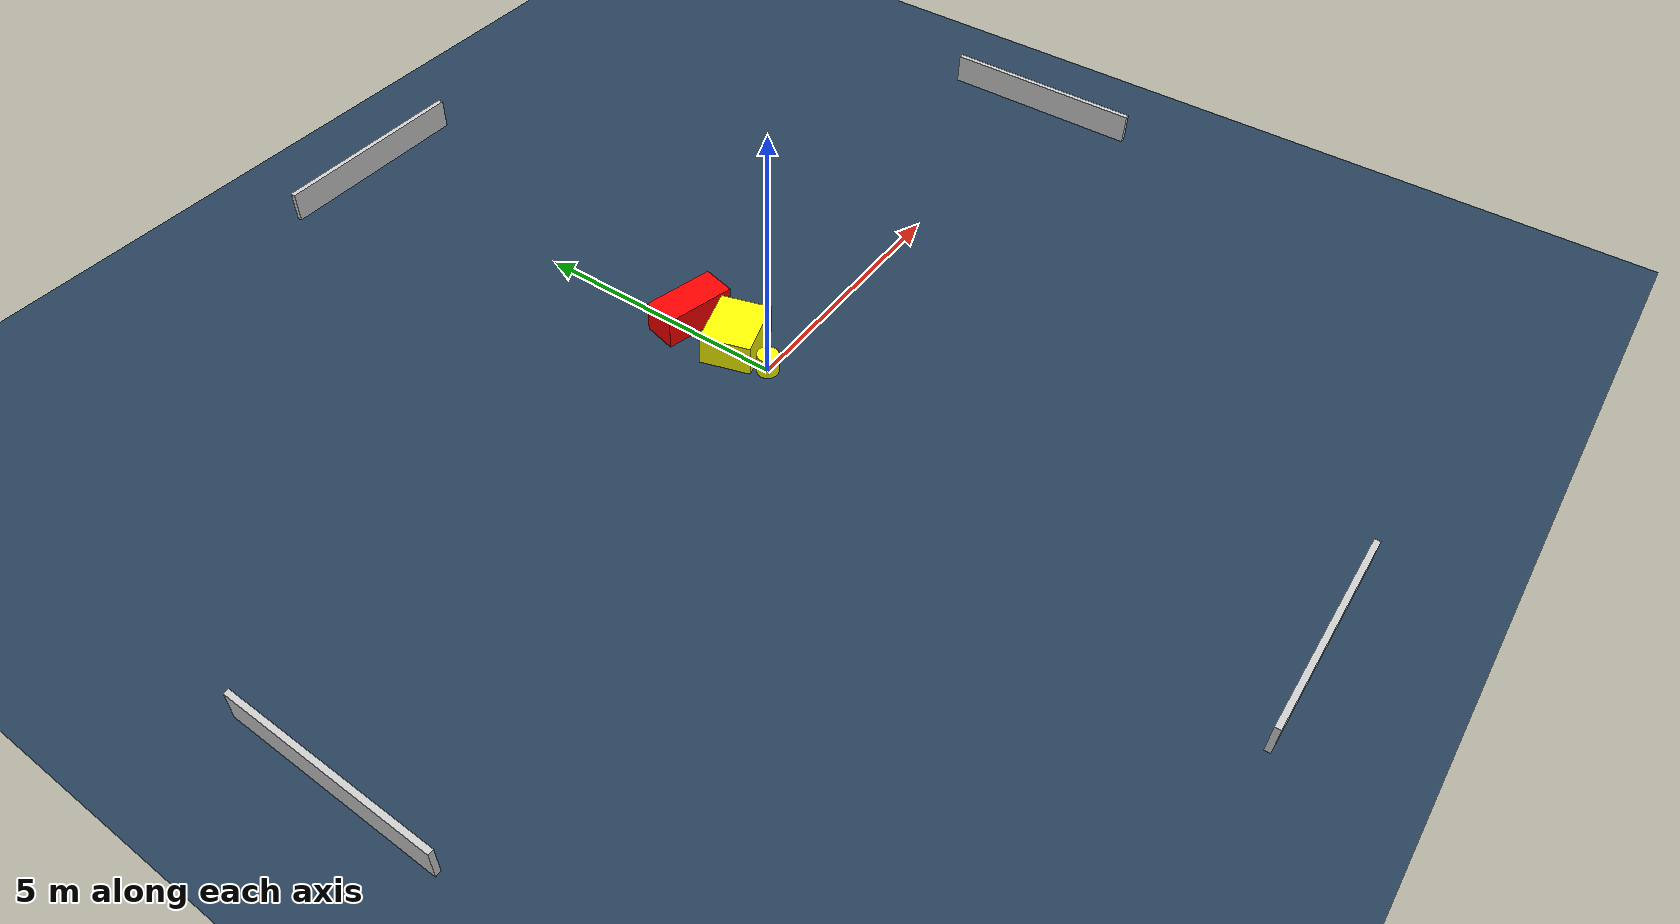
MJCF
<?xml version="1.0" ?>
<mujoco model="generated_environment">
  <option timestep="0.01" integrator="RK4" cone="elliptic"/>
  <default>
    <geom density="1"/>
  </default>
  <asset>
    <texture builtin="gradient" height="3072" name="skybox" rgb1="0.3 0.5 0.7" rgb2="0 0 0" type="skybox" width="512"/>
    <texture builtin="checker" height="300" name="groundplane" rgb1="0.2 0.3 0.4" rgb2="0.1 0.2 0.3" type="2d" width="300"/>
    <material name="groundplane" reflectance="0.2" texrepeat="5 5" texture="groundplane"/>
  </asset>
  <worldbody>
    <light dir="0 0 -1" directional="true" pos="0 0 1.5"/>
    <geom condim="3" friction="0.5 0.005 0.001" material="groundplane" name="floor" pos="0 0 0" size="0 0 0.05" type="plane"/>
    <body name="walls">
      <geom name="wall_1" condim="4" pos="-10.0 0.0 0.3" rgba="0.800000011920929 0.800000011920929 0.800000011920929 1.0" size="0.05 2.0 0.3" type="box"/>
      <geom name="wall_2" condim="4" pos="10.0 0.0 0.3" rgba="0.800000011920929 0.800000011920929 0.800000011920929 1.0" size="0.05 2.0 0.3" type="box"/>
      <geom name="wall_3" condim="4" pos="0.0 -10.0 0.3" rgba="0.800000011920929 0.800000011920929 0.800000011920929 1.0" size="2.0 0.05 0.3" type="box"/>
      <geom name="wall_4" condim="4" pos="0.0 10.0 0.3" rgba="0.800000011920929 0.800000011920929 0.800000011920929 1.0" size="2.0 0.05 0.3" type="box"/>
    </body>
    <body name="robot">
      <joint name="joint_x" type="slide" pos="0 0 0" axis="1 0 0"/>
      <joint name="joint_y" type="slide" pos="0 0 0" axis="0 1 0"/>
      <geom name="robot" type="cylinder" pos="0.0 0.0 0.2" size="0.2 0.2 0.0" mass="5.0" friction="1.0 0.005 0.0001" condim="4" rgba="1.0 1.0 0.0 1.0"/>
    </body>
    <body name="obstacle_1_movable">
      <geom name="obstacle_1_movable" condim="4" pos="0.1634976865493945 0.8206947662340145 0.3" euler="0 0 197.1850988700666" friction="0.0 0.005 0.001" rgba="1.0 1.0 0.0 1.0" size="0.582900617167786 0.4743149423128885 0.3" type="box" mass="0.1"/>
      <joint type="free"/>
    </body>
    <body name="obstacle_2_static">
      <geom name="obstacle_2_static" condim="4" pos="0.20947177904394837 1.9059601148977554 0.3" euler="0 0 76.21233973324166" friction="0.0 0.005 0.001" rgba="1.0 0.0 0.0 1.0" size="0.3229838172384283 0.6944460374041715 0.3" type="box"/>
    </body>
  </worldbody>
  <actuator>
    <motor name="actuator_x" joint="joint_x" gear="1" ctrlrange="-1 1"/>
    <motor name="actuator_y" joint="joint_y" gear="1" ctrlrange="-1 1"/>
  </actuator>
</mujoco>
